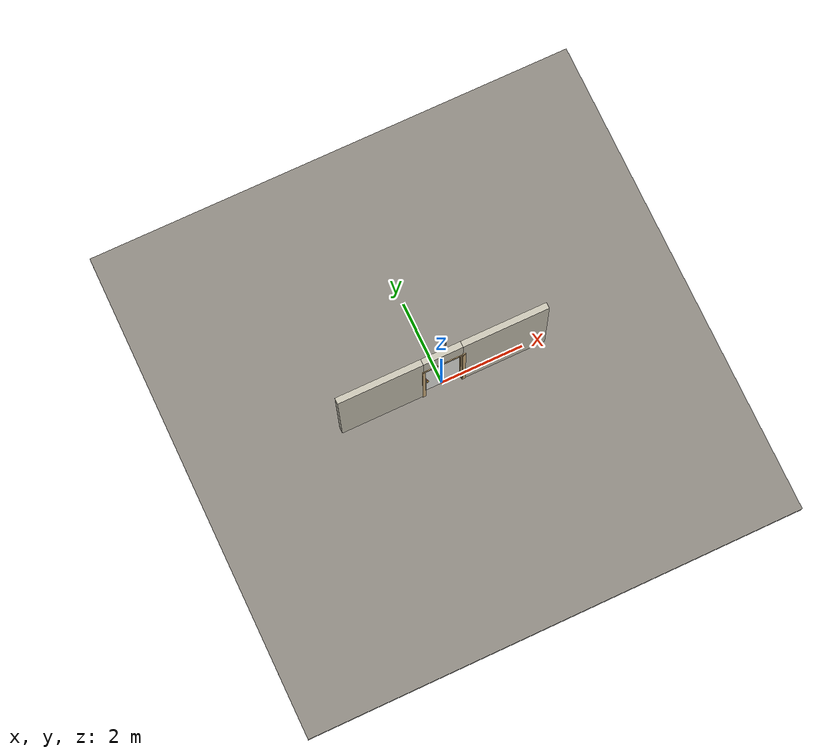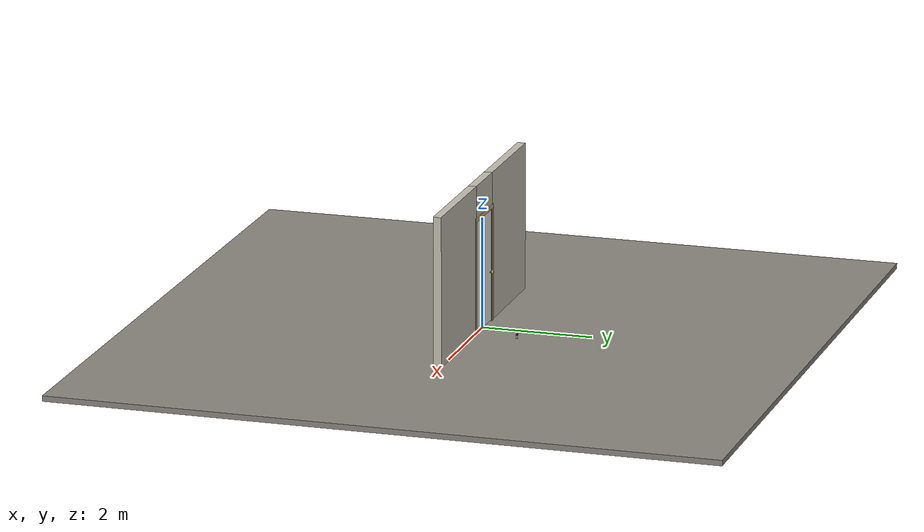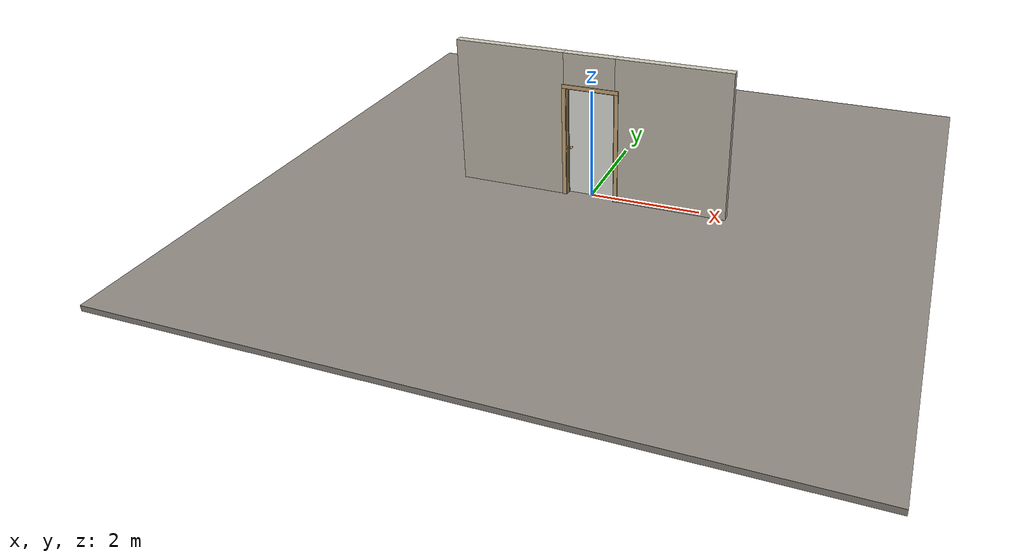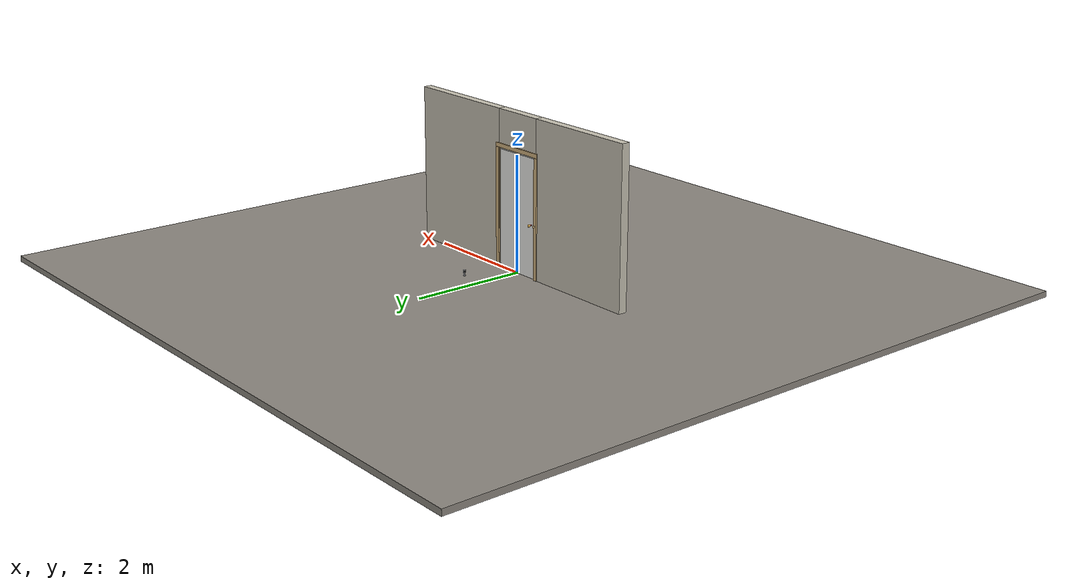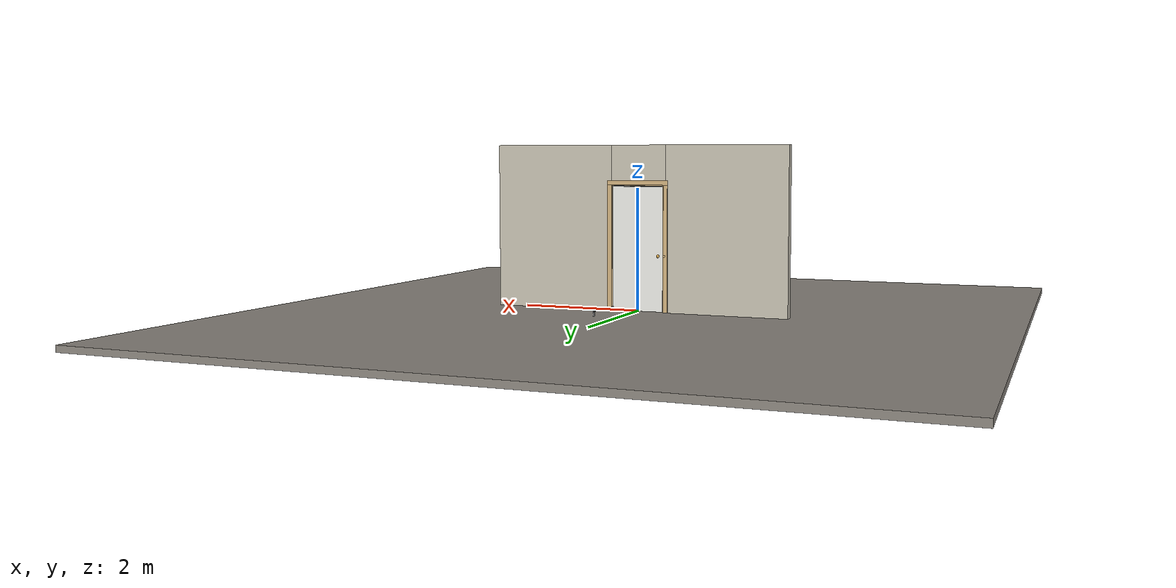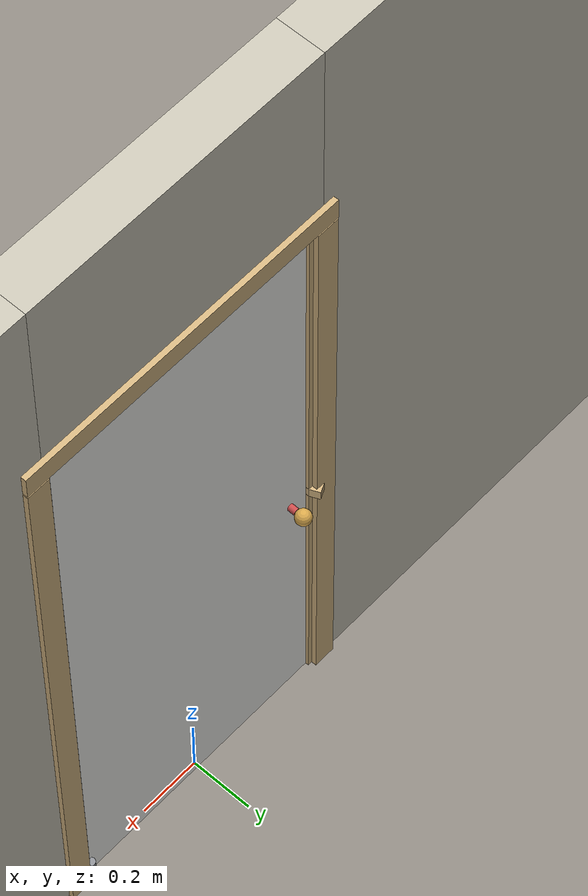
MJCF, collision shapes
<?xml version="1.0" ?>
<mujoco model="db0874_swing_single_full">
  <compiler angle="radian" meshdir="../../hardware" texturedir="../../textures" autolimits="true" inertiafromgeom="false"/>
  <option timestep="0.002" integrator="implicitfast" cone="elliptic" impratio="10" noslip_iterations="3">
    <flag multiccd="enable"/>
  </option>
  <size memory="16M"/>
  <default>
    <geom condim="4" solref="0.005 1" solimp="0.95 0.99 0.001"/>
    <joint solreflimit="0.005 1" solimplimit="0.95 0.99 0.001"/>
    <tendon solreflimit="0.005 1"/>
    <equality solref="0.002 1"/>
  </default>
  <visual>
    <headlight ambient="0.4 0.4 0.4" diffuse="0.7 0.7 0.7" specular="0.2 0.2 0.2"/>
    <quality shadowsize="4096"/>
    <map znear="0.01" zfar="60"/>
  </visual>
  <asset>
    <mesh name="hinge_c20a5829de" file="hinge_c20a5829de.obj"/>
    <mesh name="hinge_jamb_20499e6581" file="hinge_jamb_20499e6581.obj"/>
    <mesh name="knob_d1888f6f03" file="knob_d1888f6f03.obj"/>
    <material name="mat_floor" rgba="0.55 0.53 0.5 1" specular="0.2" shininess="0.15" reflectance="0"/>
    <material name="mat_wall" rgba="0.78 0.76 0.7 1" specular="0.2" shininess="0.1" reflectance="0"/>
    <material name="mat_hinge" rgba="0.55 0.56 0.58 1" specular="0.8" shininess="0.55" reflectance="0.4"/>
    <material name="mat_leaf" rgba="0.93 0.93 0.91 1" specular="0.2" shininess="0.43" reflectance="0"/>
    <material name="mat_op_brass" rgba="0.85 0.66 0.3 1" specular="0.8" shininess="0.75" reflectance="0.4"/>
    <material name="mat_trim" rgba="0.85 0.66 0.3 1" specular="0.8" shininess="0.75" reflectance="0.4"/>
    <material name="mat_bolt" rgba="0.85 0.66 0.3 1" specular="0.8" shininess="0.75" reflectance="0.4"/>
    <material name="mat_frame" rgba="0.82 0.7 0.5 1" specular="0.2" shininess="0.45" reflectance="0"/>
    <material name="mat_seal" rgba="0.1 0.1 0.1 1" specular="0.2" shininess="0.1" reflectance="0"/>
    <material name="mat_bumper_stop" rgba="0.08 0.08 0.08 1" specular="0.2" shininess="0.1" reflectance="0"/>
    <material name="mat_stop_base" rgba="0.9 0.9 0.92 1" specular="0.8" shininess="0.9" reflectance="0.4"/>
    <texture name="skybox" type="skybox" builtin="gradient" rgb1="0.6 0.7 0.85" rgb2="0.9 0.92 0.95" width="256" height="256"/>
  </asset>
  <worldbody>
    <light name="sun" pos="1.5 -2.5 4" dir="-0.3 0.5 -0.8" directional="true" diffuse="0.8 0.8 0.8" specular="0.3 0.3 0.3" castshadow="true"/>
    <light name="fill" pos="-1.5 2.5 3" dir="0.3 -0.5 -0.7" directional="true" diffuse="0.35 0.35 0.4" castshadow="false"/>
    <camera name="robot_view" pos="0 -2.590187 1.734312" xyaxes="1 0 0 0 0.26963 0.962964" fovy="52"/>
    <camera name="far_view" pos="0 2.494187 1.734312" xyaxes="-1 0 0 0 -0.26963 0.962964" fovy="52"/>
    <camera name="iso" pos="-1.932062 -2.183438 2.141063" xyaxes="0.741536 -0.670913 0 0.242917 0.268487 0.932151" fovy="46"/>
    <camera name="detail_handle" pos="-0.1915 -0.864 1.194" xyaxes="0.97561 0.219512 0 -0.070934 0.315262 0.94635" fovy="38"/>
    <geom name="floor" type="box" size="6 6 0.05" pos="0 0 -0.05" material="mat_floor" group="0" contype="1" conaffinity="1" friction="0.8 0.005 0.0001" density="2400"/>
    <geom name="wall_left" type="box" size="1.00775 0.0725 1.35" pos="-1.49225 -0.048 1.35" material="mat_wall" group="0" contype="1" conaffinity="1" friction="0.6 0.005 0.0001" density="800"/>
    <geom name="wall_right" type="box" size="1.02275 0.0725 1.35" pos="1.47725 -0.048 1.35" material="mat_wall" group="0" contype="1" conaffinity="1" friction="0.6 0.005 0.0001" density="800"/>
    <geom name="wall_header" type="box" size="0.4695 0.0725 0.303" pos="-0.015 -0.048 2.397" material="mat_wall" group="0" contype="1" conaffinity="1" friction="0.6 0.005 0.0001" density="800"/>
    <geom name="hinge_0_jamb" type="mesh" mesh="hinge_jamb_20499e6581" pos="0.4325 0.0245 0.259" quat="0 0 0 1" material="mat_hinge" group="1" contype="0" conaffinity="0" density="7850"/>
    <geom name="hinge_1_jamb" type="mesh" mesh="hinge_jamb_20499e6581" pos="0.4325 0.0245 1.0198" quat="0 0 0 1" material="mat_hinge" group="1" contype="0" conaffinity="0" density="7850"/>
    <geom name="hinge_2_jamb" type="mesh" mesh="hinge_jamb_20499e6581" pos="0.4325 0.0245 1.8506" quat="0 0 0 1" material="mat_hinge" group="1" contype="0" conaffinity="0" density="7850"/>
    <geom name="jamb_hinge" type="box" size="0.0095 0.0725 1.0225" pos="0.445 -0.048 1.0225" material="mat_frame" group="0" contype="1" conaffinity="1" friction="0.6 0.005 0.0001" density="400"/>
    <geom name="strike_914_wall_n" type="box" size="0.0245 0.056325 0.0167" pos="-0.46 -0.064175 0.914" material="mat_frame" group="0" contype="1" conaffinity="1" friction="0.6 0.005 0.0001" density="400"/>
    <geom name="strike_914_wall_p" type="box" size="0.0245 0.008 0.0167" pos="-0.46 0.01585 0.914" material="mat_frame" group="0" contype="1" conaffinity="1" friction="0.6 0.005 0.0001" density="400"/>
    <geom name="strike_914_ramp" type="box" size="0.0245 0.01649 0.0167" pos="-0.464636 0.028673 0.914" quat="0.977148 0 0 0.212558" material="mat_frame" group="0" contype="1" conaffinity="1" friction="0.12 0.005 0.0001" density="400"/>
    <geom name="strike_914_back" type="box" size="0.01615 0.00785 0.0167" pos="-0.46835 0 0.914" material="mat_frame" group="0" contype="1" conaffinity="1" friction="0.6 0.005 0.0001" density="400"/>
    <geom name="jamb_strike_0" type="box" size="0.0245 0.0725 0.44865" pos="-0.46 -0.048 0.44865" material="mat_frame" group="0" contype="1" conaffinity="1" friction="0.6 0.005 0.0001" density="400"/>
    <geom name="jamb_strike_1" type="box" size="0.0245 0.0725 0.55715" pos="-0.46 -0.048 1.48785" material="mat_frame" group="0" contype="1" conaffinity="1" friction="0.6 0.005 0.0001" density="400"/>
    <geom name="jamb_head" type="box" size="0.4695 0.0725 0.0095" pos="-0.015 -0.048 2.0545" material="mat_frame" group="0" contype="1" conaffinity="1" friction="0.6 0.005 0.0001" density="400"/>
    <geom name="head_stud" type="box" size="0.4695 0.0725 0.015" pos="-0.015 -0.048 2.079" material="mat_wall" group="0" contype="1" conaffinity="1" friction="0.6 0.005 0.0001" density="500"/>
    <geom name="stop_hinge" type="box" size="0.0055 0.016 1.0225" pos="0.43 -0.034 1.0225" material="mat_frame" group="0" contype="1" conaffinity="1" friction="0.6 0.005 0.0001" density="400"/>
    <geom name="stop_strike" type="box" size="0.0055 0.016 1.0225" pos="-0.43 -0.034 1.0225" material="mat_frame" group="0" contype="1" conaffinity="1" friction="0.6 0.005 0.0001" density="400"/>
    <geom name="stop_head" type="box" size="0.4355 0.016 0.0055" pos="0 -0.034 2.0395" material="mat_frame" group="0" contype="1" conaffinity="1" friction="0.6 0.005 0.0001" density="400"/>
    <geom name="seal_hinge" type="box" size="0.004 0.002 1.0225" pos="0.4325 -0.0195 1.0225" material="mat_seal" group="1" contype="0" conaffinity="0" density="1100"/>
    <geom name="seal_strike" type="box" size="0.004 0.002 1.0225" pos="-0.4325 -0.0195 1.0225" material="mat_seal" group="1" contype="0" conaffinity="0" density="1100"/>
    <geom name="seal_head" type="box" size="0.4155 0.002 0.008" pos="0 -0.0195 2.033" material="mat_seal" group="1" contype="0" conaffinity="0" density="1100"/>
    <geom name="casing_l_n" type="box" size="0.035 0.008 1.032" pos="-0.4845 -0.1285 1.0225" material="mat_frame" group="2" contype="0" conaffinity="0" density="400"/>
    <geom name="casing_r_n" type="box" size="0.035 0.008 1.032" pos="0.4845 -0.1285 1.0225" material="mat_frame" group="2" contype="0" conaffinity="0" density="400"/>
    <geom name="casing_h_n" type="box" size="0.5195 0.008 0.035" pos="0 -0.1285 2.094" material="mat_frame" group="2" contype="0" conaffinity="0" density="400"/>
    <geom name="casing_l_p" type="box" size="0.035 0.008 1.032" pos="-0.4845 0.0325 1.0225" material="mat_frame" group="2" contype="0" conaffinity="0" density="400"/>
    <geom name="casing_r_p" type="box" size="0.035 0.008 1.032" pos="0.4845 0.0325 1.0225" material="mat_frame" group="2" contype="0" conaffinity="0" density="400"/>
    <geom name="casing_h_p" type="box" size="0.5195 0.008 0.035" pos="0 0.0325 2.094" material="mat_frame" group="2" contype="0" conaffinity="0" density="400"/>
    <geom name="door_stop_base" type="cylinder" size="0.022 0.003" pos="0.4485 0.7589 0.003" material="mat_stop_base" group="0" contype="1" conaffinity="1" friction="0.6 0.005 0.0001" density="7850"/>
    <geom name="door_stop_post" type="cylinder" size="0.012 0.0245" pos="0.4485 0.7589 0.0305" material="mat_stop_base" group="0" contype="1" conaffinity="1" friction="0.6 0.005 0.0001" density="7850"/>
    <geom name="door_stop_bumper" type="cylinder" size="0.022 0.02" pos="0.4485 0.7589 0.075" material="mat_bumper_stop" group="0" contype="1" conaffinity="1" friction="0.6 0.005 0.0001" density="1100"/>
    <site name="approach_point" pos="0 -1.5 0" quat="1 0 0 0" size="0.05" rgba="0.2 0.9 0.2 0.5" group="4"/>
    <site name="goal_point" pos="0 1.5 0" quat="1 0 0 0" size="0.05" rgba="0.2 0.9 0.2 0.5" group="4"/>
    <site name="door_plane_center" pos="0 0 1.0225" quat="1 0 0 0" size="0.02" rgba="0.2 0.9 0.2 0.5" group="4"/>
    <body name="leaf_riser" pos="0.4355 0 0">
      <inertial pos="-0.003 0.0245 0.055" mass="0.174012" quat="0 0.707107 0 0.707107" diaginertia="0.000017053 0.00002732 0.00002732"/>
      <joint name="leaf_rise" type="slide" axis="0 0 1" limited="true" range="0 0.0176" damping="1" armature="0.5"/>
      <geom name="leaf_riser_marker" type="cylinder" size="0.014 0.018" pos="-0.003 0.0245 0.055" material="mat_hinge" group="1" contype="0" conaffinity="0" density="7850"/>
      <body name="leaf" pos="0 0 0">
        <inertial pos="-0.428967 0.000237 1.020098" mass="40.613407" quat="0.49975 0.500533 -0.499459 0.500258" diaginertia="2.603376085 13.880020848 16.474746445"/>
        <joint name="leaf_hinge" type="hinge" axis="0 0 -1" pos="-0.003 0.0245 0" limited="true" range="0 1.570796" solreflimit="0.02 1" damping="0.254501" frictionloss="3.320421" armature="0.02"/>
        <geom name="leaf_slab" type="box" size="0.432 0.0175 1.0108" pos="-0.435 0 1.0198" material="mat_leaf" group="0" contype="1" conaffinity="1" friction="0.4 0.005 0.0001" density="1"/>
        <geom name="hinge_0" type="mesh" mesh="hinge_c20a5829de" pos="-0.003 0.0245 0.259" quat="0 0 0 1" material="mat_hinge" group="1" contype="0" conaffinity="0" density="7850"/>
        <geom name="hinge_1" type="mesh" mesh="hinge_c20a5829de" pos="-0.003 0.0245 1.0198" quat="0 0 0 1" material="mat_hinge" group="1" contype="0" conaffinity="0" density="7850"/>
        <geom name="hinge_2" type="mesh" mesh="hinge_c20a5829de" pos="-0.003 0.0245 1.8506" quat="0 0 0 1" material="mat_hinge" group="1" contype="0" conaffinity="0" density="7850"/>
        <geom name="leaf_latch_bolt_faceplate" type="box" size="0.0006 0.01235 0.0267" pos="-0.8664 0 0.914" material="mat_bolt" group="1" contype="0" conaffinity="0" density="8500"/>
        <site name="leaf_edge_mid" pos="-0.867 0 1.0108" quat="1 0 0 0" size="0.02" rgba="0.2 0.9 0.2 0.5" group="4"/>
        <body name="leaf_handle" pos="-0.807 0 0.914">
          <inertial pos="0 0 0" mass="1.143961" quat="0.707107 0 0 -0.707107" diaginertia="0.00031237 0.003706292 0.003706292"/>
          <joint name="leaf_handle_hinge" type="hinge" axis="0 1 0" limited="true" range="0 0.87" damping="0.143613" frictionloss="0.038" stiffness="0.5" springref="-0.5" armature="0.01"/>
          <geom name="leaf_handle_spindle" type="cylinder" size="0.006 0.0255" pos="0 0 0" quat="0.707107 -0.707107 0 0" material="mat_op_brass" group="1" contype="0" conaffinity="0" density="7850"/>
          <geom name="leaf_handle_knob_n" type="mesh" mesh="knob_d1888f6f03" pos="0 -0.0175 0" quat="0 0 -0.707107 0.707107" material="mat_op_brass" group="1" contype="0" conaffinity="0" density="3000"/>
          <geom name="leaf_handle_knob_col_n" type="sphere" size="0.0243" pos="0 -0.064 0" material="mat_op_brass" group="0" contype="1" conaffinity="1" friction="0.9 0.01 0.0001" density="3000"/>
          <geom name="leaf_handle_knob_neck_n" type="cylinder" size="0.011 0.012" pos="0 -0.0295 0" quat="0.707107 -0.707107 0 0" material="mat_op_brass" group="3" contype="1" conaffinity="1" rgba="0.8 0.3 0.3 0.25" friction="0.6 0.005 0.0001" density="3000"/>
          <geom name="leaf_handle_knob_p" type="mesh" mesh="knob_d1888f6f03" pos="0 0.0175 0" quat="0 0 0.707107 0.707107" material="mat_op_brass" group="1" contype="0" conaffinity="0" density="3000"/>
          <geom name="leaf_handle_knob_col_p" type="sphere" size="0.0243" pos="0 0.064 0" material="mat_op_brass" group="0" contype="1" conaffinity="1" friction="0.9 0.01 0.0001" density="3000"/>
          <geom name="leaf_handle_knob_neck_p" type="cylinder" size="0.011 0.012" pos="0 0.0295 0" quat="0.707107 -0.707107 0 0" material="mat_op_brass" group="3" contype="1" conaffinity="1" rgba="0.8 0.3 0.3 0.25" friction="0.6 0.005 0.0001" density="3000"/>
          <site name="leaf_handle_grip_n" pos="0 -0.064 0" quat="1 0 0 0" size="0.012" rgba="0.2 0.9 0.2 0.5" group="4"/>
          <site name="leaf_handle_grip_p" pos="0 0.064 0" quat="1 0 0 0" size="0.012" rgba="0.2 0.9 0.2 0.5" group="4"/>
        </body>
        <body name="leaf_latch_bolt" pos="-0.867 0 0.914">
          <inertial pos="0.00865 0 0" mass="0.041419" quat="0.92388 0.382683 0 0" diaginertia="0.000000798 0.000005598 0.000005598"/>
          <joint name="leaf_latch_bolt_slide" type="slide" axis="1 0 0" limited="true" range="0 0.0127" damping="2" frictionloss="0.3" stiffness="300" springref="-0.008333" armature="0.1"/>
          <geom name="leaf_latch_bolt_capsule" type="capsule" size="0.00635 0.015" pos="0.00865 0 0" quat="0.707107 0 -0.707107 0" material="mat_bolt" group="0" contype="1" conaffinity="1" friction="0.2 0.005 0.0001" density="8500"/>
        </body>
      </body>
    </body>
  </worldbody>
  <tendon>
    <fixed name="leaf_latch_bolt_coupling" limited="true" range="0 10">
      <joint joint="leaf_latch_bolt_slide" coef="1"/>
      <joint joint="leaf_handle_hinge" coef="-0.015679"/>
    </fixed>
  </tendon>
  <equality>
    <joint name="leaf_rise_couple" joint1="leaf_rise" joint2="leaf_hinge" polycoef="0 0.005093 0 0 0" active="true"/>
  </equality>
  <sensor>
    <jointpos name="leaf_hinge_pos" joint="leaf_hinge"/>
    <jointvel name="leaf_hinge_vel" joint="leaf_hinge"/>
    <jointpos name="leaf_handle_hinge_pos" joint="leaf_handle_hinge"/>
    <jointvel name="leaf_handle_hinge_vel" joint="leaf_handle_hinge"/>
    <jointpos name="leaf_latch_bolt_slide_pos" joint="leaf_latch_bolt_slide"/>
    <jointvel name="leaf_latch_bolt_slide_vel" joint="leaf_latch_bolt_slide"/>
  </sensor>
</mujoco>
